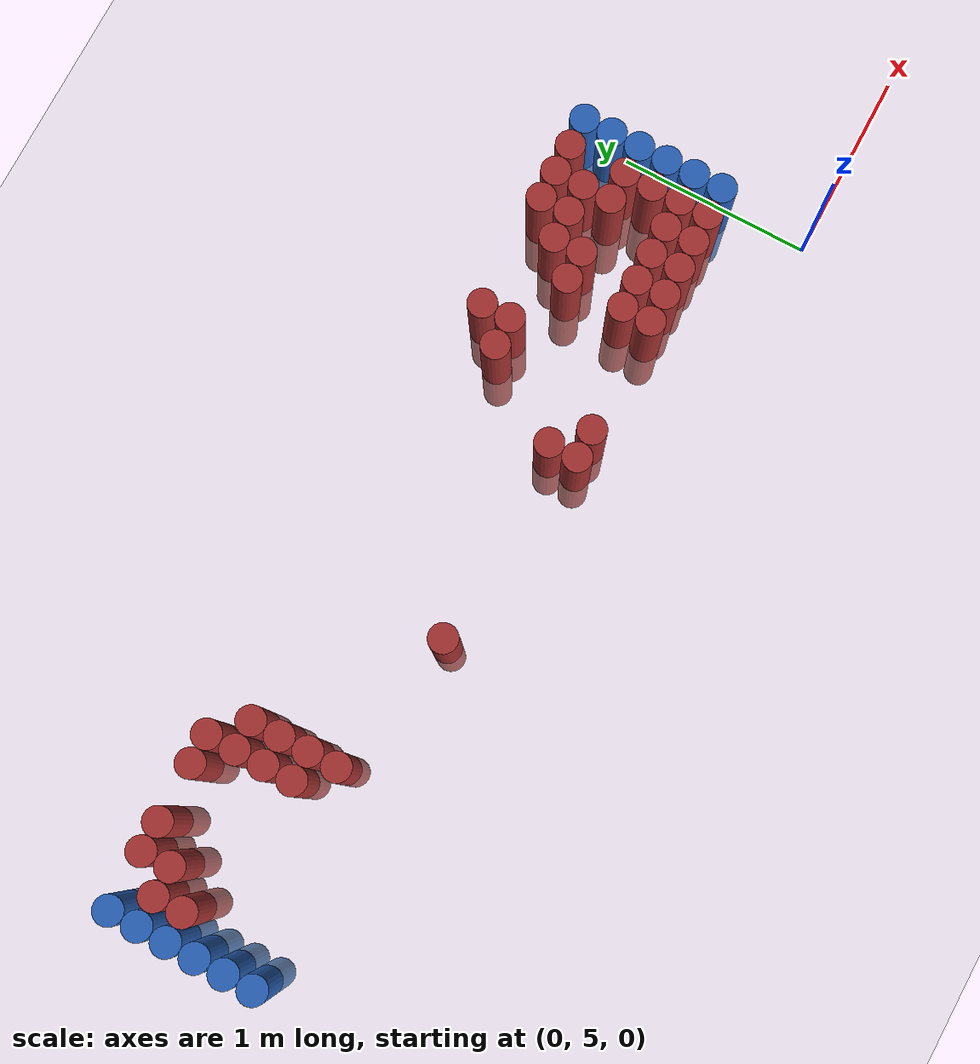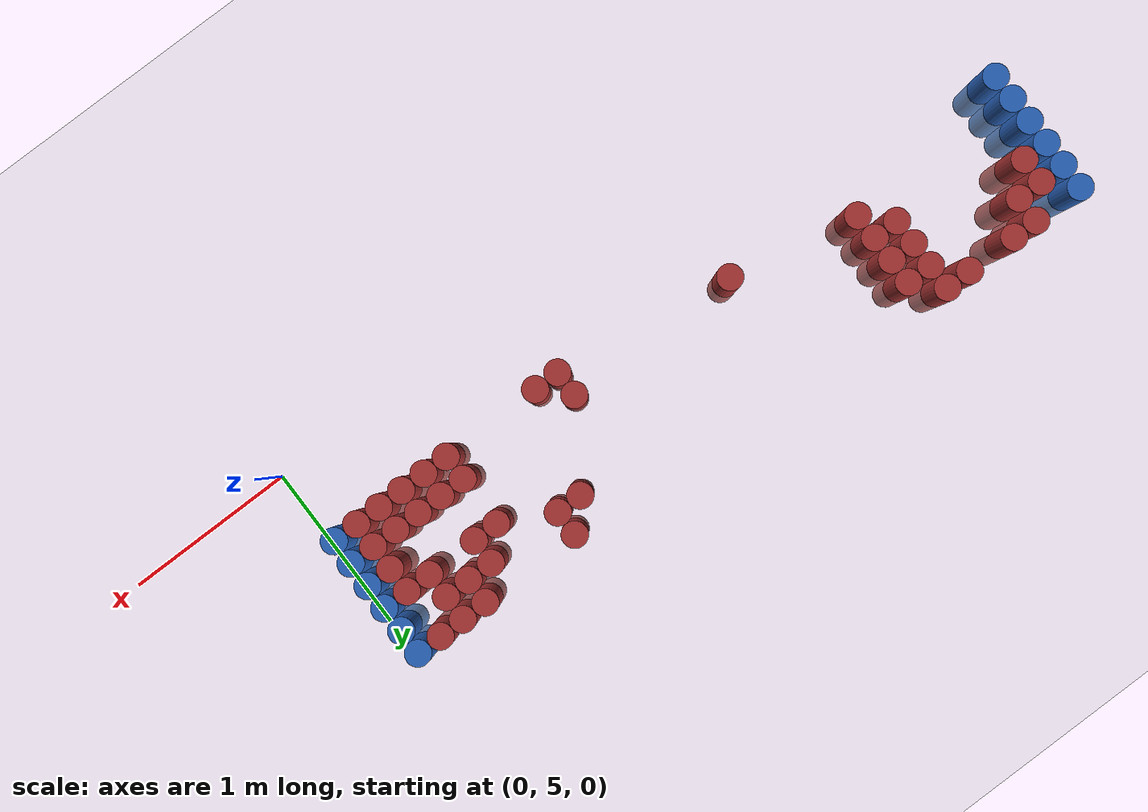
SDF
<sdf version="1.6">
 <world name="default">
  <model name="ground_plane">
   <static>1</static>
   <link name="link">
    <collision name="collision">
     <geometry><plane><normal>0 0 1</normal><size>100 100</size></plane></geometry>
     <surface><friction><ode><mu>100</mu><mu2>50</mu2></ode></friction></surface>
    </collision>
    <visual name="visual">
     <cast_shadows>0</cast_shadows>
     <geometry><plane><normal>0 0 1</normal><size>100 100</size></plane></geometry>
     <material>
      <script><uri>file://media/materials/scripts/gazebo.material</uri><name>Gazebo/Grey</name></script>
     </material>
    </visual>
   </link>
  </model>
  <model name="unit_cylinder_99">
   <static>1</static>
   <pose>-4.425000 5.625000 0.000000 0.000000 0.000000 0.000000</pose>
   <link name="link">
    <inertial>
     <mass>1</mass>
     <inertia><ixx>0.145833</ixx><ixy>0</ixy><ixz>0</ixz><iyy>0.145833</iyy><iyz>0</iyz><izz>0.125</izz></inertia>
    </inertial>
    <collision name="collision">
     <geometry><cylinder><radius>0.075000</radius><length>1</length></cylinder></geometry>
    </collision>
    <visual name="visual">
     <geometry><cylinder><radius>0.075000</radius><length>1</length></cylinder></geometry>
     <material>
      <ambient>0.152000 0.379000 0.720000 1</ambient>
      <diffuse>0.152000 0.379000 0.720000 1</diffuse>
     </material>
     <material>
      <script><name>Gazebo/Grey</name><uri>file://media/materials/scripts/gazebo.material</uri></script>
     </material>
    </visual>
   </link>
  </model>
  <model name="unit_cylinder_100">
   <static>1</static>
   <pose>-4.425000 5.775000 0.000000 0.000000 0.000000 0.000000</pose>
   <link name="link">
    <inertial>
     <mass>1</mass>
     <inertia><ixx>0.145833</ixx><ixy>0</ixy><ixz>0</ixz><iyy>0.145833</iyy><iyz>0</iyz><izz>0.125</izz></inertia>
    </inertial>
    <collision name="collision">
     <geometry><cylinder><radius>0.075000</radius><length>1</length></cylinder></geometry>
    </collision>
    <visual name="visual">
     <geometry><cylinder><radius>0.075000</radius><length>1</length></cylinder></geometry>
     <material>
      <ambient>0.152000 0.379000 0.720000 1</ambient>
      <diffuse>0.152000 0.379000 0.720000 1</diffuse>
     </material>
     <material>
      <script><name>Gazebo/Grey</name><uri>file://media/materials/scripts/gazebo.material</uri></script>
     </material>
    </visual>
   </link>
  </model>
  <model name="unit_cylinder_101">
   <static>1</static>
   <pose>-4.425000 5.925000 0.000000 0.000000 0.000000 0.000000</pose>
   <link name="link">
    <inertial>
     <mass>1</mass>
     <inertia><ixx>0.145833</ixx><ixy>0</ixy><ixz>0</ixz><iyy>0.145833</iyy><iyz>0</iyz><izz>0.125</izz></inertia>
    </inertial>
    <collision name="collision">
     <geometry><cylinder><radius>0.075000</radius><length>1</length></cylinder></geometry>
    </collision>
    <visual name="visual">
     <geometry><cylinder><radius>0.075000</radius><length>1</length></cylinder></geometry>
     <material>
      <ambient>0.152000 0.379000 0.720000 1</ambient>
      <diffuse>0.152000 0.379000 0.720000 1</diffuse>
     </material>
     <material>
      <script><name>Gazebo/Grey</name><uri>file://media/materials/scripts/gazebo.material</uri></script>
     </material>
    </visual>
   </link>
  </model>
  <model name="unit_cylinder_102">
   <static>1</static>
   <pose>-4.425000 6.075000 0.000000 0.000000 0.000000 0.000000</pose>
   <link name="link">
    <inertial>
     <mass>1</mass>
     <inertia><ixx>0.145833</ixx><ixy>0</ixy><ixz>0</ixz><iyy>0.145833</iyy><iyz>0</iyz><izz>0.125</izz></inertia>
    </inertial>
    <collision name="collision">
     <geometry><cylinder><radius>0.075000</radius><length>1</length></cylinder></geometry>
    </collision>
    <visual name="visual">
     <geometry><cylinder><radius>0.075000</radius><length>1</length></cylinder></geometry>
     <material>
      <ambient>0.152000 0.379000 0.720000 1</ambient>
      <diffuse>0.152000 0.379000 0.720000 1</diffuse>
     </material>
     <material>
      <script><name>Gazebo/Grey</name><uri>file://media/materials/scripts/gazebo.material</uri></script>
     </material>
    </visual>
   </link>
  </model>
  <model name="unit_cylinder_103">
   <static>1</static>
   <pose>-4.425000 6.225000 0.000000 0.000000 0.000000 0.000000</pose>
   <link name="link">
    <inertial>
     <mass>1</mass>
     <inertia><ixx>0.145833</ixx><ixy>0</ixy><ixz>0</ixz><iyy>0.145833</iyy><iyz>0</iyz><izz>0.125</izz></inertia>
    </inertial>
    <collision name="collision">
     <geometry><cylinder><radius>0.075000</radius><length>1</length></cylinder></geometry>
    </collision>
    <visual name="visual">
     <geometry><cylinder><radius>0.075000</radius><length>1</length></cylinder></geometry>
     <material>
      <ambient>0.152000 0.379000 0.720000 1</ambient>
      <diffuse>0.152000 0.379000 0.720000 1</diffuse>
     </material>
     <material>
      <script><name>Gazebo/Grey</name><uri>file://media/materials/scripts/gazebo.material</uri></script>
     </material>
    </visual>
   </link>
  </model>
  <model name="unit_cylinder_104">
   <static>1</static>
   <pose>-4.425000 6.375000 0.000000 0.000000 0.000000 0.000000</pose>
   <link name="link">
    <inertial>
     <mass>1</mass>
     <inertia><ixx>0.145833</ixx><ixy>0</ixy><ixz>0</ixz><iyy>0.145833</iyy><iyz>0</iyz><izz>0.125</izz></inertia>
    </inertial>
    <collision name="collision">
     <geometry><cylinder><radius>0.075000</radius><length>1</length></cylinder></geometry>
    </collision>
    <visual name="visual">
     <geometry><cylinder><radius>0.075000</radius><length>1</length></cylinder></geometry>
     <material>
      <ambient>0.152000 0.379000 0.720000 1</ambient>
      <diffuse>0.152000 0.379000 0.720000 1</diffuse>
     </material>
     <material>
      <script><name>Gazebo/Grey</name><uri>file://media/materials/scripts/gazebo.material</uri></script>
     </material>
    </visual>
   </link>
  </model>
  <model name="unit_cylinder_126">
   <static>1</static>
   <pose>-4.275000 6.075000 0.000000 0.000000 0.000000 0.000000</pose>
   <link name="link">
    <inertial>
     <mass>1</mass>
     <inertia><ixx>0.145833</ixx><ixy>0</ixy><ixz>0</ixz><iyy>0.145833</iyy><iyz>0</iyz><izz>0.125</izz></inertia>
    </inertial>
    <collision name="collision">
     <geometry><cylinder><radius>0.075000</radius><length>1</length></cylinder></geometry>
    </collision>
    <visual name="visual">
     <geometry><cylinder><radius>0.075000</radius><length>1</length></cylinder></geometry>
     <material>
      <ambient>0.648000 0.192000 0.192000 1</ambient>
      <diffuse>0.648000 0.192000 0.192000 1</diffuse>
     </material>
     <material>
      <script><name>Gazebo/Grey</name><uri>file://media/materials/scripts/gazebo.material</uri></script>
     </material>
    </visual>
   </link>
  </model>
  <model name="unit_cylinder_127">
   <static>1</static>
   <pose>-4.275000 6.225000 0.000000 0.000000 0.000000 0.000000</pose>
   <link name="link">
    <inertial>
     <mass>1</mass>
     <inertia><ixx>0.145833</ixx><ixy>0</ixy><ixz>0</ixz><iyy>0.145833</iyy><iyz>0</iyz><izz>0.125</izz></inertia>
    </inertial>
    <collision name="collision">
     <geometry><cylinder><radius>0.075000</radius><length>1</length></cylinder></geometry>
    </collision>
    <visual name="visual">
     <geometry><cylinder><radius>0.075000</radius><length>1</length></cylinder></geometry>
     <material>
      <ambient>0.648000 0.192000 0.192000 1</ambient>
      <diffuse>0.648000 0.192000 0.192000 1</diffuse>
     </material>
     <material>
      <script><name>Gazebo/Grey</name><uri>file://media/materials/scripts/gazebo.material</uri></script>
     </material>
    </visual>
   </link>
  </model>
  <model name="unit_cylinder_144">
   <static>1</static>
   <pose>-4.125000 6.225000 0.000000 0.000000 0.000000 0.000000</pose>
   <link name="link">
    <inertial>
     <mass>1</mass>
     <inertia><ixx>0.145833</ixx><ixy>0</ixy><ixz>0</ixz><iyy>0.145833</iyy><iyz>0</iyz><izz>0.125</izz></inertia>
    </inertial>
    <collision name="collision">
     <geometry><cylinder><radius>0.075000</radius><length>1</length></cylinder></geometry>
    </collision>
    <visual name="visual">
     <geometry><cylinder><radius>0.075000</radius><length>1</length></cylinder></geometry>
     <material>
      <ambient>0.648000 0.192000 0.192000 1</ambient>
      <diffuse>0.648000 0.192000 0.192000 1</diffuse>
     </material>
     <material>
      <script><name>Gazebo/Grey</name><uri>file://media/materials/scripts/gazebo.material</uri></script>
     </material>
    </visual>
   </link>
  </model>
  <model name="unit_cylinder_145">
   <static>1</static>
   <pose>-4.125000 6.375000 0.000000 0.000000 0.000000 0.000000</pose>
   <link name="link">
    <inertial>
     <mass>1</mass>
     <inertia><ixx>0.145833</ixx><ixy>0</ixy><ixz>0</ixz><iyy>0.145833</iyy><iyz>0</iyz><izz>0.125</izz></inertia>
    </inertial>
    <collision name="collision">
     <geometry><cylinder><radius>0.075000</radius><length>1</length></cylinder></geometry>
    </collision>
    <visual name="visual">
     <geometry><cylinder><radius>0.075000</radius><length>1</length></cylinder></geometry>
     <material>
      <ambient>0.648000 0.192000 0.192000 1</ambient>
      <diffuse>0.648000 0.192000 0.192000 1</diffuse>
     </material>
     <material>
      <script><name>Gazebo/Grey</name><uri>file://media/materials/scripts/gazebo.material</uri></script>
     </material>
    </visual>
   </link>
  </model>
  <model name="unit_cylinder_153">
   <static>1</static>
   <pose>-3.975000 6.375000 0.000000 0.000000 0.000000 0.000000</pose>
   <link name="link">
    <inertial>
     <mass>1</mass>
     <inertia><ixx>0.145833</ixx><ixy>0</ixy><ixz>0</ixz><iyy>0.145833</iyy><iyz>0</iyz><izz>0.125</izz></inertia>
    </inertial>
    <collision name="collision">
     <geometry><cylinder><radius>0.075000</radius><length>1</length></cylinder></geometry>
    </collision>
    <visual name="visual">
     <geometry><cylinder><radius>0.075000</radius><length>1</length></cylinder></geometry>
     <material>
      <ambient>0.648000 0.192000 0.192000 1</ambient>
      <diffuse>0.648000 0.192000 0.192000 1</diffuse>
     </material>
     <material>
      <script><name>Gazebo/Grey</name><uri>file://media/materials/scripts/gazebo.material</uri></script>
     </material>
    </visual>
   </link>
  </model>
  <model name="unit_cylinder_164">
   <static>1</static>
   <pose>-3.675000 6.375000 0.000000 0.000000 0.000000 0.000000</pose>
   <link name="link">
    <inertial>
     <mass>1</mass>
     <inertia><ixx>0.145833</ixx><ixy>0</ixy><ixz>0</ixz><iyy>0.145833</iyy><iyz>0</iyz><izz>0.125</izz></inertia>
    </inertial>
    <collision name="collision">
     <geometry><cylinder><radius>0.075000</radius><length>1</length></cylinder></geometry>
    </collision>
    <visual name="visual">
     <geometry><cylinder><radius>0.075000</radius><length>1</length></cylinder></geometry>
     <material>
      <ambient>0.648000 0.192000 0.192000 1</ambient>
      <diffuse>0.648000 0.192000 0.192000 1</diffuse>
     </material>
     <material>
      <script><name>Gazebo/Grey</name><uri>file://media/materials/scripts/gazebo.material</uri></script>
     </material>
    </visual>
   </link>
  </model>
  <model name="unit_cylinder_167">
   <static>1</static>
   <pose>-3.525000 5.925000 0.000000 0.000000 0.000000 0.000000</pose>
   <link name="link">
    <inertial>
     <mass>1</mass>
     <inertia><ixx>0.145833</ixx><ixy>0</ixy><ixz>0</ixz><iyy>0.145833</iyy><iyz>0</iyz><izz>0.125</izz></inertia>
    </inertial>
    <collision name="collision">
     <geometry><cylinder><radius>0.075000</radius><length>1</length></cylinder></geometry>
    </collision>
    <visual name="visual">
     <geometry><cylinder><radius>0.075000</radius><length>1</length></cylinder></geometry>
     <material>
      <ambient>0.648000 0.192000 0.192000 1</ambient>
      <diffuse>0.648000 0.192000 0.192000 1</diffuse>
     </material>
     <material>
      <script><name>Gazebo/Grey</name><uri>file://media/materials/scripts/gazebo.material</uri></script>
     </material>
    </visual>
   </link>
  </model>
  <model name="unit_cylinder_168">
   <static>1</static>
   <pose>-3.525000 6.075000 0.000000 0.000000 0.000000 0.000000</pose>
   <link name="link">
    <inertial>
     <mass>1</mass>
     <inertia><ixx>0.145833</ixx><ixy>0</ixy><ixz>0</ixz><iyy>0.145833</iyy><iyz>0</iyz><izz>0.125</izz></inertia>
    </inertial>
    <collision name="collision">
     <geometry><cylinder><radius>0.075000</radius><length>1</length></cylinder></geometry>
    </collision>
    <visual name="visual">
     <geometry><cylinder><radius>0.075000</radius><length>1</length></cylinder></geometry>
     <material>
      <ambient>0.648000 0.192000 0.192000 1</ambient>
      <diffuse>0.648000 0.192000 0.192000 1</diffuse>
     </material>
     <material>
      <script><name>Gazebo/Grey</name><uri>file://media/materials/scripts/gazebo.material</uri></script>
     </material>
    </visual>
   </link>
  </model>
  <model name="unit_cylinder_169">
   <static>1</static>
   <pose>-3.525000 6.225000 0.000000 0.000000 0.000000 0.000000</pose>
   <link name="link">
    <inertial>
     <mass>1</mass>
     <inertia><ixx>0.145833</ixx><ixy>0</ixy><ixz>0</ixz><iyy>0.145833</iyy><iyz>0</iyz><izz>0.125</izz></inertia>
    </inertial>
    <collision name="collision">
     <geometry><cylinder><radius>0.075000</radius><length>1</length></cylinder></geometry>
    </collision>
    <visual name="visual">
     <geometry><cylinder><radius>0.075000</radius><length>1</length></cylinder></geometry>
     <material>
      <ambient>0.648000 0.192000 0.192000 1</ambient>
      <diffuse>0.648000 0.192000 0.192000 1</diffuse>
     </material>
     <material>
      <script><name>Gazebo/Grey</name><uri>file://media/materials/scripts/gazebo.material</uri></script>
     </material>
    </visual>
   </link>
  </model>
  <model name="unit_cylinder_170">
   <static>1</static>
   <pose>-3.525000 6.375000 0.000000 0.000000 0.000000 0.000000</pose>
   <link name="link">
    <inertial>
     <mass>1</mass>
     <inertia><ixx>0.145833</ixx><ixy>0</ixy><ixz>0</ixz><iyy>0.145833</iyy><iyz>0</iyz><izz>0.125</izz></inertia>
    </inertial>
    <collision name="collision">
     <geometry><cylinder><radius>0.075000</radius><length>1</length></cylinder></geometry>
    </collision>
    <visual name="visual">
     <geometry><cylinder><radius>0.075000</radius><length>1</length></cylinder></geometry>
     <material>
      <ambient>0.648000 0.192000 0.192000 1</ambient>
      <diffuse>0.648000 0.192000 0.192000 1</diffuse>
     </material>
     <material>
      <script><name>Gazebo/Grey</name><uri>file://media/materials/scripts/gazebo.material</uri></script>
     </material>
    </visual>
   </link>
  </model>
  <model name="unit_cylinder_172">
   <static>1</static>
   <pose>-3.375000 5.775000 0.000000 0.000000 0.000000 0.000000</pose>
   <link name="link">
    <inertial>
     <mass>1</mass>
     <inertia><ixx>0.145833</ixx><ixy>0</ixy><ixz>0</ixz><iyy>0.145833</iyy><iyz>0</iyz><izz>0.125</izz></inertia>
    </inertial>
    <collision name="collision">
     <geometry><cylinder><radius>0.075000</radius><length>1</length></cylinder></geometry>
    </collision>
    <visual name="visual">
     <geometry><cylinder><radius>0.075000</radius><length>1</length></cylinder></geometry>
     <material>
      <ambient>0.648000 0.192000 0.192000 1</ambient>
      <diffuse>0.648000 0.192000 0.192000 1</diffuse>
     </material>
     <material>
      <script><name>Gazebo/Grey</name><uri>file://media/materials/scripts/gazebo.material</uri></script>
     </material>
    </visual>
   </link>
  </model>
  <model name="unit_cylinder_173">
   <static>1</static>
   <pose>-3.375000 5.925000 0.000000 0.000000 0.000000 0.000000</pose>
   <link name="link">
    <inertial>
     <mass>1</mass>
     <inertia><ixx>0.145833</ixx><ixy>0</ixy><ixz>0</ixz><iyy>0.145833</iyy><iyz>0</iyz><izz>0.125</izz></inertia>
    </inertial>
    <collision name="collision">
     <geometry><cylinder><radius>0.075000</radius><length>1</length></cylinder></geometry>
    </collision>
    <visual name="visual">
     <geometry><cylinder><radius>0.075000</radius><length>1</length></cylinder></geometry>
     <material>
      <ambient>0.648000 0.192000 0.192000 1</ambient>
      <diffuse>0.648000 0.192000 0.192000 1</diffuse>
     </material>
     <material>
      <script><name>Gazebo/Grey</name><uri>file://media/materials/scripts/gazebo.material</uri></script>
     </material>
    </visual>
   </link>
  </model>
  <model name="unit_cylinder_174">
   <static>1</static>
   <pose>-3.375000 6.075000 0.000000 0.000000 0.000000 0.000000</pose>
   <link name="link">
    <inertial>
     <mass>1</mass>
     <inertia><ixx>0.145833</ixx><ixy>0</ixy><ixz>0</ixz><iyy>0.145833</iyy><iyz>0</iyz><izz>0.125</izz></inertia>
    </inertial>
    <collision name="collision">
     <geometry><cylinder><radius>0.075000</radius><length>1</length></cylinder></geometry>
    </collision>
    <visual name="visual">
     <geometry><cylinder><radius>0.075000</radius><length>1</length></cylinder></geometry>
     <material>
      <ambient>0.648000 0.192000 0.192000 1</ambient>
      <diffuse>0.648000 0.192000 0.192000 1</diffuse>
     </material>
     <material>
      <script><name>Gazebo/Grey</name><uri>file://media/materials/scripts/gazebo.material</uri></script>
     </material>
    </visual>
   </link>
  </model>
  <model name="unit_cylinder_175">
   <static>1</static>
   <pose>-3.375000 6.225000 0.000000 0.000000 0.000000 0.000000</pose>
   <link name="link">
    <inertial>
     <mass>1</mass>
     <inertia><ixx>0.145833</ixx><ixy>0</ixy><ixz>0</ixz><iyy>0.145833</iyy><iyz>0</iyz><izz>0.125</izz></inertia>
    </inertial>
    <collision name="collision">
     <geometry><cylinder><radius>0.075000</radius><length>1</length></cylinder></geometry>
    </collision>
    <visual name="visual">
     <geometry><cylinder><radius>0.075000</radius><length>1</length></cylinder></geometry>
     <material>
      <ambient>0.648000 0.192000 0.192000 1</ambient>
      <diffuse>0.648000 0.192000 0.192000 1</diffuse>
     </material>
     <material>
      <script><name>Gazebo/Grey</name><uri>file://media/materials/scripts/gazebo.material</uri></script>
     </material>
    </visual>
   </link>
  </model>
  <model name="unit_cylinder_193">
   <static>1</static>
   <pose>-2.625000 5.625000 0.000000 0.000000 0.000000 0.000000</pose>
   <link name="link">
    <inertial>
     <mass>1</mass>
     <inertia><ixx>0.145833</ixx><ixy>0</ixy><ixz>0</ixz><iyy>0.145833</iyy><iyz>0</iyz><izz>0.125</izz></inertia>
    </inertial>
    <collision name="collision">
     <geometry><cylinder><radius>0.075000</radius><length>1</length></cylinder></geometry>
    </collision>
    <visual name="visual">
     <geometry><cylinder><radius>0.075000</radius><length>1</length></cylinder></geometry>
     <material>
      <ambient>0.648000 0.192000 0.192000 1</ambient>
      <diffuse>0.648000 0.192000 0.192000 1</diffuse>
     </material>
     <material>
      <script><name>Gazebo/Grey</name><uri>file://media/materials/scripts/gazebo.material</uri></script>
     </material>
    </visual>
   </link>
  </model>
  <model name="unit_cylinder_218">
   <static>1</static>
   <pose>-1.575000 5.475000 0.000000 0.000000 0.000000 0.000000</pose>
   <link name="link">
    <inertial>
     <mass>1</mass>
     <inertia><ixx>0.145833</ixx><ixy>0</ixy><ixz>0</ixz><iyy>0.145833</iyy><iyz>0</iyz><izz>0.125</izz></inertia>
    </inertial>
    <collision name="collision">
     <geometry><cylinder><radius>0.075000</radius><length>1</length></cylinder></geometry>
    </collision>
    <visual name="visual">
     <geometry><cylinder><radius>0.075000</radius><length>1</length></cylinder></geometry>
     <material>
      <ambient>0.648000 0.192000 0.192000 1</ambient>
      <diffuse>0.648000 0.192000 0.192000 1</diffuse>
     </material>
     <material>
      <script><name>Gazebo/Grey</name><uri>file://media/materials/scripts/gazebo.material</uri></script>
     </material>
    </visual>
   </link>
  </model>
  <model name="unit_cylinder_219">
   <static>1</static>
   <pose>-1.575000 5.625000 0.000000 0.000000 0.000000 0.000000</pose>
   <link name="link">
    <inertial>
     <mass>1</mass>
     <inertia><ixx>0.145833</ixx><ixy>0</ixy><ixz>0</ixz><iyy>0.145833</iyy><iyz>0</iyz><izz>0.125</izz></inertia>
    </inertial>
    <collision name="collision">
     <geometry><cylinder><radius>0.075000</radius><length>1</length></cylinder></geometry>
    </collision>
    <visual name="visual">
     <geometry><cylinder><radius>0.075000</radius><length>1</length></cylinder></geometry>
     <material>
      <ambient>0.648000 0.192000 0.192000 1</ambient>
      <diffuse>0.648000 0.192000 0.192000 1</diffuse>
     </material>
     <material>
      <script><name>Gazebo/Grey</name><uri>file://media/materials/scripts/gazebo.material</uri></script>
     </material>
    </visual>
   </link>
  </model>
  <model name="unit_cylinder_220">
   <static>1</static>
   <pose>-1.425000 5.475000 0.000000 0.000000 0.000000 0.000000</pose>
   <link name="link">
    <inertial>
     <mass>1</mass>
     <inertia><ixx>0.145833</ixx><ixy>0</ixy><ixz>0</ixz><iyy>0.145833</iyy><iyz>0</iyz><izz>0.125</izz></inertia>
    </inertial>
    <collision name="collision">
     <geometry><cylinder><radius>0.075000</radius><length>1</length></cylinder></geometry>
    </collision>
    <visual name="visual">
     <geometry><cylinder><radius>0.075000</radius><length>1</length></cylinder></geometry>
     <material>
      <ambient>0.648000 0.192000 0.192000 1</ambient>
      <diffuse>0.648000 0.192000 0.192000 1</diffuse>
     </material>
     <material>
      <script><name>Gazebo/Grey</name><uri>file://media/materials/scripts/gazebo.material</uri></script>
     </material>
    </visual>
   </link>
  </model>
  <model name="unit_cylinder_221">
   <static>1</static>
   <pose>-1.275000 6.075000 0.000000 0.000000 0.000000 0.000000</pose>
   <link name="link">
    <inertial>
     <mass>1</mass>
     <inertia><ixx>0.145833</ixx><ixy>0</ixy><ixz>0</ixz><iyy>0.145833</iyy><iyz>0</iyz><izz>0.125</izz></inertia>
    </inertial>
    <collision name="collision">
     <geometry><cylinder><radius>0.075000</radius><length>1</length></cylinder></geometry>
    </collision>
    <visual name="visual">
     <geometry><cylinder><radius>0.075000</radius><length>1</length></cylinder></geometry>
     <material>
      <ambient>0.648000 0.192000 0.192000 1</ambient>
      <diffuse>0.648000 0.192000 0.192000 1</diffuse>
     </material>
     <material>
      <script><name>Gazebo/Grey</name><uri>file://media/materials/scripts/gazebo.material</uri></script>
     </material>
    </visual>
   </link>
  </model>
  <model name="unit_cylinder_222">
   <static>1</static>
   <pose>-1.125000 6.075000 0.000000 0.000000 0.000000 0.000000</pose>
   <link name="link">
    <inertial>
     <mass>1</mass>
     <inertia><ixx>0.145833</ixx><ixy>0</ixy><ixz>0</ixz><iyy>0.145833</iyy><iyz>0</iyz><izz>0.125</izz></inertia>
    </inertial>
    <collision name="collision">
     <geometry><cylinder><radius>0.075000</radius><length>1</length></cylinder></geometry>
    </collision>
    <visual name="visual">
     <geometry><cylinder><radius>0.075000</radius><length>1</length></cylinder></geometry>
     <material>
      <ambient>0.648000 0.192000 0.192000 1</ambient>
      <diffuse>0.648000 0.192000 0.192000 1</diffuse>
     </material>
     <material>
      <script><name>Gazebo/Grey</name><uri>file://media/materials/scripts/gazebo.material</uri></script>
     </material>
    </visual>
   </link>
  </model>
  <model name="unit_cylinder_223">
   <static>1</static>
   <pose>-1.125000 6.225000 0.000000 0.000000 0.000000 0.000000</pose>
   <link name="link">
    <inertial>
     <mass>1</mass>
     <inertia><ixx>0.145833</ixx><ixy>0</ixy><ixz>0</ixz><iyy>0.145833</iyy><iyz>0</iyz><izz>0.125</izz></inertia>
    </inertial>
    <collision name="collision">
     <geometry><cylinder><radius>0.075000</radius><length>1</length></cylinder></geometry>
    </collision>
    <visual name="visual">
     <geometry><cylinder><radius>0.075000</radius><length>1</length></cylinder></geometry>
     <material>
      <ambient>0.648000 0.192000 0.192000 1</ambient>
      <diffuse>0.648000 0.192000 0.192000 1</diffuse>
     </material>
     <material>
      <script><name>Gazebo/Grey</name><uri>file://media/materials/scripts/gazebo.material</uri></script>
     </material>
    </visual>
   </link>
  </model>
  <model name="unit_cylinder_234">
   <static>1</static>
   <pose>-0.825000 5.475000 0.000000 0.000000 0.000000 0.000000</pose>
   <link name="link">
    <inertial>
     <mass>1</mass>
     <inertia><ixx>0.145833</ixx><ixy>0</ixy><ixz>0</ixz><iyy>0.145833</iyy><iyz>0</iyz><izz>0.125</izz></inertia>
    </inertial>
    <collision name="collision">
     <geometry><cylinder><radius>0.075000</radius><length>1</length></cylinder></geometry>
    </collision>
    <visual name="visual">
     <geometry><cylinder><radius>0.075000</radius><length>1</length></cylinder></geometry>
     <material>
      <ambient>0.648000 0.192000 0.192000 1</ambient>
      <diffuse>0.648000 0.192000 0.192000 1</diffuse>
     </material>
     <material>
      <script><name>Gazebo/Grey</name><uri>file://media/materials/scripts/gazebo.material</uri></script>
     </material>
    </visual>
   </link>
  </model>
  <model name="unit_cylinder_235">
   <static>1</static>
   <pose>-0.825000 5.625000 0.000000 0.000000 0.000000 0.000000</pose>
   <link name="link">
    <inertial>
     <mass>1</mass>
     <inertia><ixx>0.145833</ixx><ixy>0</ixy><ixz>0</ixz><iyy>0.145833</iyy><iyz>0</iyz><izz>0.125</izz></inertia>
    </inertial>
    <collision name="collision">
     <geometry><cylinder><radius>0.075000</radius><length>1</length></cylinder></geometry>
    </collision>
    <visual name="visual">
     <geometry><cylinder><radius>0.075000</radius><length>1</length></cylinder></geometry>
     <material>
      <ambient>0.648000 0.192000 0.192000 1</ambient>
      <diffuse>0.648000 0.192000 0.192000 1</diffuse>
     </material>
     <material>
      <script><name>Gazebo/Grey</name><uri>file://media/materials/scripts/gazebo.material</uri></script>
     </material>
    </visual>
   </link>
  </model>
  <model name="unit_cylinder_236">
   <static>1</static>
   <pose>-0.825000 5.925000 0.000000 0.000000 0.000000 0.000000</pose>
   <link name="link">
    <inertial>
     <mass>1</mass>
     <inertia><ixx>0.145833</ixx><ixy>0</ixy><ixz>0</ixz><iyy>0.145833</iyy><iyz>0</iyz><izz>0.125</izz></inertia>
    </inertial>
    <collision name="collision">
     <geometry><cylinder><radius>0.075000</radius><length>1</length></cylinder></geometry>
    </collision>
    <visual name="visual">
     <geometry><cylinder><radius>0.075000</radius><length>1</length></cylinder></geometry>
     <material>
      <ambient>0.648000 0.192000 0.192000 1</ambient>
      <diffuse>0.648000 0.192000 0.192000 1</diffuse>
     </material>
     <material>
      <script><name>Gazebo/Grey</name><uri>file://media/materials/scripts/gazebo.material</uri></script>
     </material>
    </visual>
   </link>
  </model>
  <model name="unit_cylinder_245">
   <static>1</static>
   <pose>-0.675000 5.475000 0.000000 0.000000 0.000000 0.000000</pose>
   <link name="link">
    <inertial>
     <mass>1</mass>
     <inertia><ixx>0.145833</ixx><ixy>0</ixy><ixz>0</ixz><iyy>0.145833</iyy><iyz>0</iyz><izz>0.125</izz></inertia>
    </inertial>
    <collision name="collision">
     <geometry><cylinder><radius>0.075000</radius><length>1</length></cylinder></geometry>
    </collision>
    <visual name="visual">
     <geometry><cylinder><radius>0.075000</radius><length>1</length></cylinder></geometry>
     <material>
      <ambient>0.648000 0.192000 0.192000 1</ambient>
      <diffuse>0.648000 0.192000 0.192000 1</diffuse>
     </material>
     <material>
      <script><name>Gazebo/Grey</name><uri>file://media/materials/scripts/gazebo.material</uri></script>
     </material>
    </visual>
   </link>
  </model>
  <model name="unit_cylinder_246">
   <static>1</static>
   <pose>-0.675000 5.625000 0.000000 0.000000 0.000000 0.000000</pose>
   <link name="link">
    <inertial>
     <mass>1</mass>
     <inertia><ixx>0.145833</ixx><ixy>0</ixy><ixz>0</ixz><iyy>0.145833</iyy><iyz>0</iyz><izz>0.125</izz></inertia>
    </inertial>
    <collision name="collision">
     <geometry><cylinder><radius>0.075000</radius><length>1</length></cylinder></geometry>
    </collision>
    <visual name="visual">
     <geometry><cylinder><radius>0.075000</radius><length>1</length></cylinder></geometry>
     <material>
      <ambient>0.648000 0.192000 0.192000 1</ambient>
      <diffuse>0.648000 0.192000 0.192000 1</diffuse>
     </material>
     <material>
      <script><name>Gazebo/Grey</name><uri>file://media/materials/scripts/gazebo.material</uri></script>
     </material>
    </visual>
   </link>
  </model>
  <model name="unit_cylinder_247">
   <static>1</static>
   <pose>-0.675000 5.925000 0.000000 0.000000 0.000000 0.000000</pose>
   <link name="link">
    <inertial>
     <mass>1</mass>
     <inertia><ixx>0.145833</ixx><ixy>0</ixy><ixz>0</ixz><iyy>0.145833</iyy><iyz>0</iyz><izz>0.125</izz></inertia>
    </inertial>
    <collision name="collision">
     <geometry><cylinder><radius>0.075000</radius><length>1</length></cylinder></geometry>
    </collision>
    <visual name="visual">
     <geometry><cylinder><radius>0.075000</radius><length>1</length></cylinder></geometry>
     <material>
      <ambient>0.648000 0.192000 0.192000 1</ambient>
      <diffuse>0.648000 0.192000 0.192000 1</diffuse>
     </material>
     <material>
      <script><name>Gazebo/Grey</name><uri>file://media/materials/scripts/gazebo.material</uri></script>
     </material>
    </visual>
   </link>
  </model>
  <model name="unit_cylinder_248">
   <static>1</static>
   <pose>-0.675000 6.075000 0.000000 0.000000 0.000000 0.000000</pose>
   <link name="link">
    <inertial>
     <mass>1</mass>
     <inertia><ixx>0.145833</ixx><ixy>0</ixy><ixz>0</ixz><iyy>0.145833</iyy><iyz>0</iyz><izz>0.125</izz></inertia>
    </inertial>
    <collision name="collision">
     <geometry><cylinder><radius>0.075000</radius><length>1</length></cylinder></geometry>
    </collision>
    <visual name="visual">
     <geometry><cylinder><radius>0.075000</radius><length>1</length></cylinder></geometry>
     <material>
      <ambient>0.648000 0.192000 0.192000 1</ambient>
      <diffuse>0.648000 0.192000 0.192000 1</diffuse>
     </material>
     <material>
      <script><name>Gazebo/Grey</name><uri>file://media/materials/scripts/gazebo.material</uri></script>
     </material>
    </visual>
   </link>
  </model>
  <model name="unit_cylinder_257">
   <static>1</static>
   <pose>-0.525000 5.475000 0.000000 0.000000 0.000000 0.000000</pose>
   <link name="link">
    <inertial>
     <mass>1</mass>
     <inertia><ixx>0.145833</ixx><ixy>0</ixy><ixz>0</ixz><iyy>0.145833</iyy><iyz>0</iyz><izz>0.125</izz></inertia>
    </inertial>
    <collision name="collision">
     <geometry><cylinder><radius>0.075000</radius><length>1</length></cylinder></geometry>
    </collision>
    <visual name="visual">
     <geometry><cylinder><radius>0.075000</radius><length>1</length></cylinder></geometry>
     <material>
      <ambient>0.648000 0.192000 0.192000 1</ambient>
      <diffuse>0.648000 0.192000 0.192000 1</diffuse>
     </material>
     <material>
      <script><name>Gazebo/Grey</name><uri>file://media/materials/scripts/gazebo.material</uri></script>
     </material>
    </visual>
   </link>
  </model>
  <model name="unit_cylinder_258">
   <static>1</static>
   <pose>-0.525000 5.625000 0.000000 0.000000 0.000000 0.000000</pose>
   <link name="link">
    <inertial>
     <mass>1</mass>
     <inertia><ixx>0.145833</ixx><ixy>0</ixy><ixz>0</ixz><iyy>0.145833</iyy><iyz>0</iyz><izz>0.125</izz></inertia>
    </inertial>
    <collision name="collision">
     <geometry><cylinder><radius>0.075000</radius><length>1</length></cylinder></geometry>
    </collision>
    <visual name="visual">
     <geometry><cylinder><radius>0.075000</radius><length>1</length></cylinder></geometry>
     <material>
      <ambient>0.648000 0.192000 0.192000 1</ambient>
      <diffuse>0.648000 0.192000 0.192000 1</diffuse>
     </material>
     <material>
      <script><name>Gazebo/Grey</name><uri>file://media/materials/scripts/gazebo.material</uri></script>
     </material>
    </visual>
   </link>
  </model>
  <model name="unit_cylinder_259">
   <static>1</static>
   <pose>-0.525000 6.075000 0.000000 0.000000 0.000000 0.000000</pose>
   <link name="link">
    <inertial>
     <mass>1</mass>
     <inertia><ixx>0.145833</ixx><ixy>0</ixy><ixz>0</ixz><iyy>0.145833</iyy><iyz>0</iyz><izz>0.125</izz></inertia>
    </inertial>
    <collision name="collision">
     <geometry><cylinder><radius>0.075000</radius><length>1</length></cylinder></geometry>
    </collision>
    <visual name="visual">
     <geometry><cylinder><radius>0.075000</radius><length>1</length></cylinder></geometry>
     <material>
      <ambient>0.648000 0.192000 0.192000 1</ambient>
      <diffuse>0.648000 0.192000 0.192000 1</diffuse>
     </material>
     <material>
      <script><name>Gazebo/Grey</name><uri>file://media/materials/scripts/gazebo.material</uri></script>
     </material>
    </visual>
   </link>
  </model>
  <model name="unit_cylinder_260">
   <static>1</static>
   <pose>-0.525000 6.225000 0.000000 0.000000 0.000000 0.000000</pose>
   <link name="link">
    <inertial>
     <mass>1</mass>
     <inertia><ixx>0.145833</ixx><ixy>0</ixy><ixz>0</ixz><iyy>0.145833</iyy><iyz>0</iyz><izz>0.125</izz></inertia>
    </inertial>
    <collision name="collision">
     <geometry><cylinder><radius>0.075000</radius><length>1</length></cylinder></geometry>
    </collision>
    <visual name="visual">
     <geometry><cylinder><radius>0.075000</radius><length>1</length></cylinder></geometry>
     <material>
      <ambient>0.648000 0.192000 0.192000 1</ambient>
      <diffuse>0.648000 0.192000 0.192000 1</diffuse>
     </material>
     <material>
      <script><name>Gazebo/Grey</name><uri>file://media/materials/scripts/gazebo.material</uri></script>
     </material>
    </visual>
   </link>
  </model>
  <model name="unit_cylinder_266">
   <static>1</static>
   <pose>-0.375000 5.475000 0.000000 0.000000 0.000000 0.000000</pose>
   <link name="link">
    <inertial>
     <mass>1</mass>
     <inertia><ixx>0.145833</ixx><ixy>0</ixy><ixz>0</ixz><iyy>0.145833</iyy><iyz>0</iyz><izz>0.125</izz></inertia>
    </inertial>
    <collision name="collision">
     <geometry><cylinder><radius>0.075000</radius><length>1</length></cylinder></geometry>
    </collision>
    <visual name="visual">
     <geometry><cylinder><radius>0.075000</radius><length>1</length></cylinder></geometry>
     <material>
      <ambient>0.648000 0.192000 0.192000 1</ambient>
      <diffuse>0.648000 0.192000 0.192000 1</diffuse>
     </material>
     <material>
      <script><name>Gazebo/Grey</name><uri>file://media/materials/scripts/gazebo.material</uri></script>
     </material>
    </visual>
   </link>
  </model>
  <model name="unit_cylinder_267">
   <static>1</static>
   <pose>-0.375000 5.625000 0.000000 0.000000 0.000000 0.000000</pose>
   <link name="link">
    <inertial>
     <mass>1</mass>
     <inertia><ixx>0.145833</ixx><ixy>0</ixy><ixz>0</ixz><iyy>0.145833</iyy><iyz>0</iyz><izz>0.125</izz></inertia>
    </inertial>
    <collision name="collision">
     <geometry><cylinder><radius>0.075000</radius><length>1</length></cylinder></geometry>
    </collision>
    <visual name="visual">
     <geometry><cylinder><radius>0.075000</radius><length>1</length></cylinder></geometry>
     <material>
      <ambient>0.648000 0.192000 0.192000 1</ambient>
      <diffuse>0.648000 0.192000 0.192000 1</diffuse>
     </material>
     <material>
      <script><name>Gazebo/Grey</name><uri>file://media/materials/scripts/gazebo.material</uri></script>
     </material>
    </visual>
   </link>
  </model>
  <model name="unit_cylinder_268">
   <static>1</static>
   <pose>-0.375000 5.925000 0.000000 0.000000 0.000000 0.000000</pose>
   <link name="link">
    <inertial>
     <mass>1</mass>
     <inertia><ixx>0.145833</ixx><ixy>0</ixy><ixz>0</ixz><iyy>0.145833</iyy><iyz>0</iyz><izz>0.125</izz></inertia>
    </inertial>
    <collision name="collision">
     <geometry><cylinder><radius>0.075000</radius><length>1</length></cylinder></geometry>
    </collision>
    <visual name="visual">
     <geometry><cylinder><radius>0.075000</radius><length>1</length></cylinder></geometry>
     <material>
      <ambient>0.648000 0.192000 0.192000 1</ambient>
      <diffuse>0.648000 0.192000 0.192000 1</diffuse>
     </material>
     <material>
      <script><name>Gazebo/Grey</name><uri>file://media/materials/scripts/gazebo.material</uri></script>
     </material>
    </visual>
   </link>
  </model>
  <model name="unit_cylinder_269">
   <static>1</static>
   <pose>-0.375000 6.075000 0.000000 0.000000 0.000000 0.000000</pose>
   <link name="link">
    <inertial>
     <mass>1</mass>
     <inertia><ixx>0.145833</ixx><ixy>0</ixy><ixz>0</ixz><iyy>0.145833</iyy><iyz>0</iyz><izz>0.125</izz></inertia>
    </inertial>
    <collision name="collision">
     <geometry><cylinder><radius>0.075000</radius><length>1</length></cylinder></geometry>
    </collision>
    <visual name="visual">
     <geometry><cylinder><radius>0.075000</radius><length>1</length></cylinder></geometry>
     <material>
      <ambient>0.648000 0.192000 0.192000 1</ambient>
      <diffuse>0.648000 0.192000 0.192000 1</diffuse>
     </material>
     <material>
      <script><name>Gazebo/Grey</name><uri>file://media/materials/scripts/gazebo.material</uri></script>
     </material>
    </visual>
   </link>
  </model>
  <model name="unit_cylinder_270">
   <static>1</static>
   <pose>-0.375000 6.225000 0.000000 0.000000 0.000000 0.000000</pose>
   <link name="link">
    <inertial>
     <mass>1</mass>
     <inertia><ixx>0.145833</ixx><ixy>0</ixy><ixz>0</ixz><iyy>0.145833</iyy><iyz>0</iyz><izz>0.125</izz></inertia>
    </inertial>
    <collision name="collision">
     <geometry><cylinder><radius>0.075000</radius><length>1</length></cylinder></geometry>
    </collision>
    <visual name="visual">
     <geometry><cylinder><radius>0.075000</radius><length>1</length></cylinder></geometry>
     <material>
      <ambient>0.648000 0.192000 0.192000 1</ambient>
      <diffuse>0.648000 0.192000 0.192000 1</diffuse>
     </material>
     <material>
      <script><name>Gazebo/Grey</name><uri>file://media/materials/scripts/gazebo.material</uri></script>
     </material>
    </visual>
   </link>
  </model>
  <model name="unit_cylinder_282">
   <static>1</static>
   <pose>-0.225000 5.475000 0.000000 0.000000 0.000000 0.000000</pose>
   <link name="link">
    <inertial>
     <mass>1</mass>
     <inertia><ixx>0.145833</ixx><ixy>0</ixy><ixz>0</ixz><iyy>0.145833</iyy><iyz>0</iyz><izz>0.125</izz></inertia>
    </inertial>
    <collision name="collision">
     <geometry><cylinder><radius>0.075000</radius><length>1</length></cylinder></geometry>
    </collision>
    <visual name="visual">
     <geometry><cylinder><radius>0.075000</radius><length>1</length></cylinder></geometry>
     <material>
      <ambient>0.648000 0.192000 0.192000 1</ambient>
      <diffuse>0.648000 0.192000 0.192000 1</diffuse>
     </material>
     <material>
      <script><name>Gazebo/Grey</name><uri>file://media/materials/scripts/gazebo.material</uri></script>
     </material>
    </visual>
   </link>
  </model>
  <model name="unit_cylinder_283">
   <static>1</static>
   <pose>-0.225000 5.625000 0.000000 0.000000 0.000000 0.000000</pose>
   <link name="link">
    <inertial>
     <mass>1</mass>
     <inertia><ixx>0.145833</ixx><ixy>0</ixy><ixz>0</ixz><iyy>0.145833</iyy><iyz>0</iyz><izz>0.125</izz></inertia>
    </inertial>
    <collision name="collision">
     <geometry><cylinder><radius>0.075000</radius><length>1</length></cylinder></geometry>
    </collision>
    <visual name="visual">
     <geometry><cylinder><radius>0.075000</radius><length>1</length></cylinder></geometry>
     <material>
      <ambient>0.648000 0.192000 0.192000 1</ambient>
      <diffuse>0.648000 0.192000 0.192000 1</diffuse>
     </material>
     <material>
      <script><name>Gazebo/Grey</name><uri>file://media/materials/scripts/gazebo.material</uri></script>
     </material>
    </visual>
   </link>
  </model>
  <model name="unit_cylinder_284">
   <static>1</static>
   <pose>-0.225000 5.775000 0.000000 0.000000 0.000000 0.000000</pose>
   <link name="link">
    <inertial>
     <mass>1</mass>
     <inertia><ixx>0.145833</ixx><ixy>0</ixy><ixz>0</ixz><iyy>0.145833</iyy><iyz>0</iyz><izz>0.125</izz></inertia>
    </inertial>
    <collision name="collision">
     <geometry><cylinder><radius>0.075000</radius><length>1</length></cylinder></geometry>
    </collision>
    <visual name="visual">
     <geometry><cylinder><radius>0.075000</radius><length>1</length></cylinder></geometry>
     <material>
      <ambient>0.648000 0.192000 0.192000 1</ambient>
      <diffuse>0.648000 0.192000 0.192000 1</diffuse>
     </material>
     <material>
      <script><name>Gazebo/Grey</name><uri>file://media/materials/scripts/gazebo.material</uri></script>
     </material>
    </visual>
   </link>
  </model>
  <model name="unit_cylinder_285">
   <static>1</static>
   <pose>-0.225000 5.925000 0.000000 0.000000 0.000000 0.000000</pose>
   <link name="link">
    <inertial>
     <mass>1</mass>
     <inertia><ixx>0.145833</ixx><ixy>0</ixy><ixz>0</ixz><iyy>0.145833</iyy><iyz>0</iyz><izz>0.125</izz></inertia>
    </inertial>
    <collision name="collision">
     <geometry><cylinder><radius>0.075000</radius><length>1</length></cylinder></geometry>
    </collision>
    <visual name="visual">
     <geometry><cylinder><radius>0.075000</radius><length>1</length></cylinder></geometry>
     <material>
      <ambient>0.648000 0.192000 0.192000 1</ambient>
      <diffuse>0.648000 0.192000 0.192000 1</diffuse>
     </material>
     <material>
      <script><name>Gazebo/Grey</name><uri>file://media/materials/scripts/gazebo.material</uri></script>
     </material>
    </visual>
   </link>
  </model>
  <model name="unit_cylinder_286">
   <static>1</static>
   <pose>-0.225000 6.225000 0.000000 0.000000 0.000000 0.000000</pose>
   <link name="link">
    <inertial>
     <mass>1</mass>
     <inertia><ixx>0.145833</ixx><ixy>0</ixy><ixz>0</ixz><iyy>0.145833</iyy><iyz>0</iyz><izz>0.125</izz></inertia>
    </inertial>
    <collision name="collision">
     <geometry><cylinder><radius>0.075000</radius><length>1</length></cylinder></geometry>
    </collision>
    <visual name="visual">
     <geometry><cylinder><radius>0.075000</radius><length>1</length></cylinder></geometry>
     <material>
      <ambient>0.648000 0.192000 0.192000 1</ambient>
      <diffuse>0.648000 0.192000 0.192000 1</diffuse>
     </material>
     <material>
      <script><name>Gazebo/Grey</name><uri>file://media/materials/scripts/gazebo.material</uri></script>
     </material>
    </visual>
   </link>
  </model>
  <model name="unit_cylinder_297">
   <static>1</static>
   <pose>-0.075000 5.475000 0.000000 0.000000 0.000000 0.000000</pose>
   <link name="link">
    <inertial>
     <mass>1</mass>
     <inertia><ixx>0.145833</ixx><ixy>0</ixy><ixz>0</ixz><iyy>0.145833</iyy><iyz>0</iyz><izz>0.125</izz></inertia>
    </inertial>
    <collision name="collision">
     <geometry><cylinder><radius>0.075000</radius><length>1</length></cylinder></geometry>
    </collision>
    <visual name="visual">
     <geometry><cylinder><radius>0.075000</radius><length>1</length></cylinder></geometry>
     <material>
      <ambient>0.152000 0.379000 0.720000 1</ambient>
      <diffuse>0.152000 0.379000 0.720000 1</diffuse>
     </material>
     <material>
      <script><name>Gazebo/Grey</name><uri>file://media/materials/scripts/gazebo.material</uri></script>
     </material>
    </visual>
   </link>
  </model>
  <model name="unit_cylinder_298">
   <static>1</static>
   <pose>-0.075000 5.625000 0.000000 0.000000 0.000000 0.000000</pose>
   <link name="link">
    <inertial>
     <mass>1</mass>
     <inertia><ixx>0.145833</ixx><ixy>0</ixy><ixz>0</ixz><iyy>0.145833</iyy><iyz>0</iyz><izz>0.125</izz></inertia>
    </inertial>
    <collision name="collision">
     <geometry><cylinder><radius>0.075000</radius><length>1</length></cylinder></geometry>
    </collision>
    <visual name="visual">
     <geometry><cylinder><radius>0.075000</radius><length>1</length></cylinder></geometry>
     <material>
      <ambient>0.152000 0.379000 0.720000 1</ambient>
      <diffuse>0.152000 0.379000 0.720000 1</diffuse>
     </material>
     <material>
      <script><name>Gazebo/Grey</name><uri>file://media/materials/scripts/gazebo.material</uri></script>
     </material>
    </visual>
   </link>
  </model>
  <model name="unit_cylinder_299">
   <static>1</static>
   <pose>-0.075000 5.775000 0.000000 0.000000 0.000000 0.000000</pose>
   <link name="link">
    <inertial>
     <mass>1</mass>
     <inertia><ixx>0.145833</ixx><ixy>0</ixy><ixz>0</ixz><iyy>0.145833</iyy><iyz>0</iyz><izz>0.125</izz></inertia>
    </inertial>
    <collision name="collision">
     <geometry><cylinder><radius>0.075000</radius><length>1</length></cylinder></geometry>
    </collision>
    <visual name="visual">
     <geometry><cylinder><radius>0.075000</radius><length>1</length></cylinder></geometry>
     <material>
      <ambient>0.152000 0.379000 0.720000 1</ambient>
      <diffuse>0.152000 0.379000 0.720000 1</diffuse>
     </material>
     <material>
      <script><name>Gazebo/Grey</name><uri>file://media/materials/scripts/gazebo.material</uri></script>
     </material>
    </visual>
   </link>
  </model>
  <model name="unit_cylinder_300">
   <static>1</static>
   <pose>-0.075000 5.925000 0.000000 0.000000 0.000000 0.000000</pose>
   <link name="link">
    <inertial>
     <mass>1</mass>
     <inertia><ixx>0.145833</ixx><ixy>0</ixy><ixz>0</ixz><iyy>0.145833</iyy><iyz>0</iyz><izz>0.125</izz></inertia>
    </inertial>
    <collision name="collision">
     <geometry><cylinder><radius>0.075000</radius><length>1</length></cylinder></geometry>
    </collision>
    <visual name="visual">
     <geometry><cylinder><radius>0.075000</radius><length>1</length></cylinder></geometry>
     <material>
      <ambient>0.152000 0.379000 0.720000 1</ambient>
      <diffuse>0.152000 0.379000 0.720000 1</diffuse>
     </material>
     <material>
      <script><name>Gazebo/Grey</name><uri>file://media/materials/scripts/gazebo.material</uri></script>
     </material>
    </visual>
   </link>
  </model>
  <model name="unit_cylinder_301">
   <static>1</static>
   <pose>-0.075000 6.075000 0.000000 0.000000 0.000000 0.000000</pose>
   <link name="link">
    <inertial>
     <mass>1</mass>
     <inertia><ixx>0.145833</ixx><ixy>0</ixy><ixz>0</ixz><iyy>0.145833</iyy><iyz>0</iyz><izz>0.125</izz></inertia>
    </inertial>
    <collision name="collision">
     <geometry><cylinder><radius>0.075000</radius><length>1</length></cylinder></geometry>
    </collision>
    <visual name="visual">
     <geometry><cylinder><radius>0.075000</radius><length>1</length></cylinder></geometry>
     <material>
      <ambient>0.152000 0.379000 0.720000 1</ambient>
      <diffuse>0.152000 0.379000 0.720000 1</diffuse>
     </material>
     <material>
      <script><name>Gazebo/Grey</name><uri>file://media/materials/scripts/gazebo.material</uri></script>
     </material>
    </visual>
   </link>
  </model>
  <model name="unit_cylinder_302">
   <static>1</static>
   <pose>-0.075000 6.225000 0.000000 0.000000 0.000000 0.000000</pose>
   <link name="link">
    <inertial>
     <mass>1</mass>
     <inertia><ixx>0.145833</ixx><ixy>0</ixy><ixz>0</ixz><iyy>0.145833</iyy><iyz>0</iyz><izz>0.125</izz></inertia>
    </inertial>
    <collision name="collision">
     <geometry><cylinder><radius>0.075000</radius><length>1</length></cylinder></geometry>
    </collision>
    <visual name="visual">
     <geometry><cylinder><radius>0.075000</radius><length>1</length></cylinder></geometry>
     <material>
      <ambient>0.152000 0.379000 0.720000 1</ambient>
      <diffuse>0.152000 0.379000 0.720000 1</diffuse>
     </material>
     <material>
      <script><name>Gazebo/Grey</name><uri>file://media/materials/scripts/gazebo.material</uri></script>
     </material>
    </visual>
   </link>
  </model>
 </world>
</sdf>
